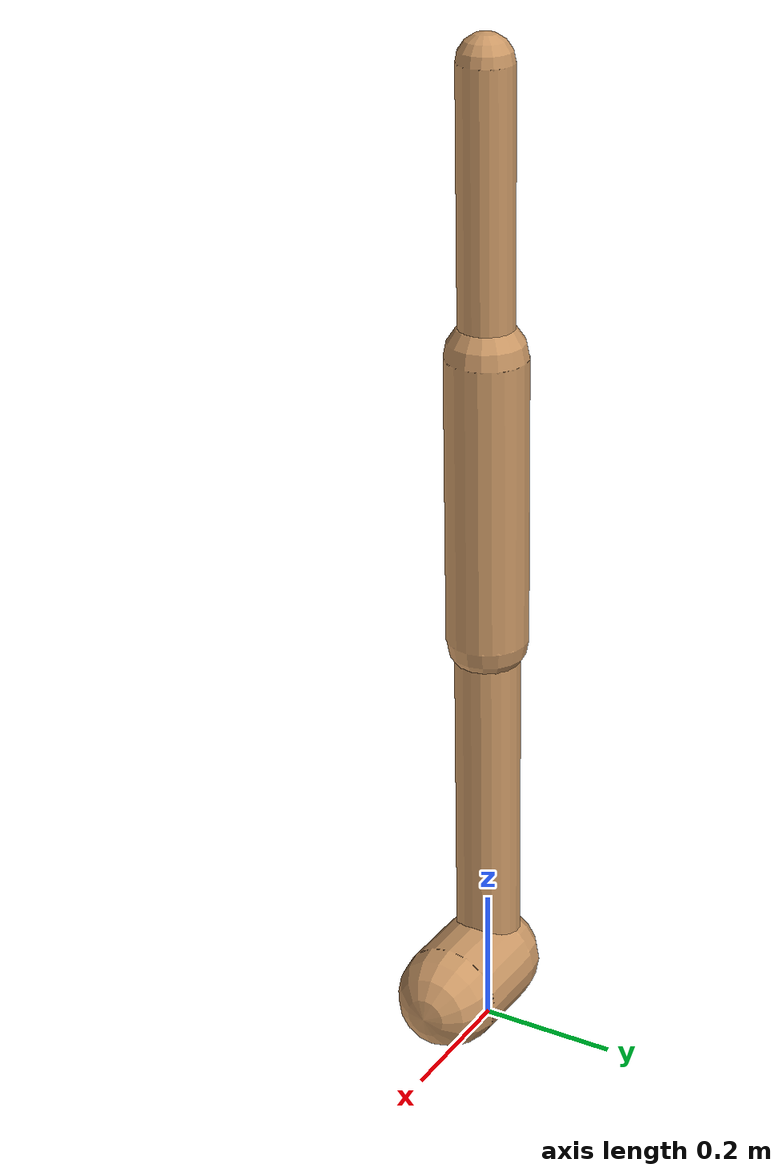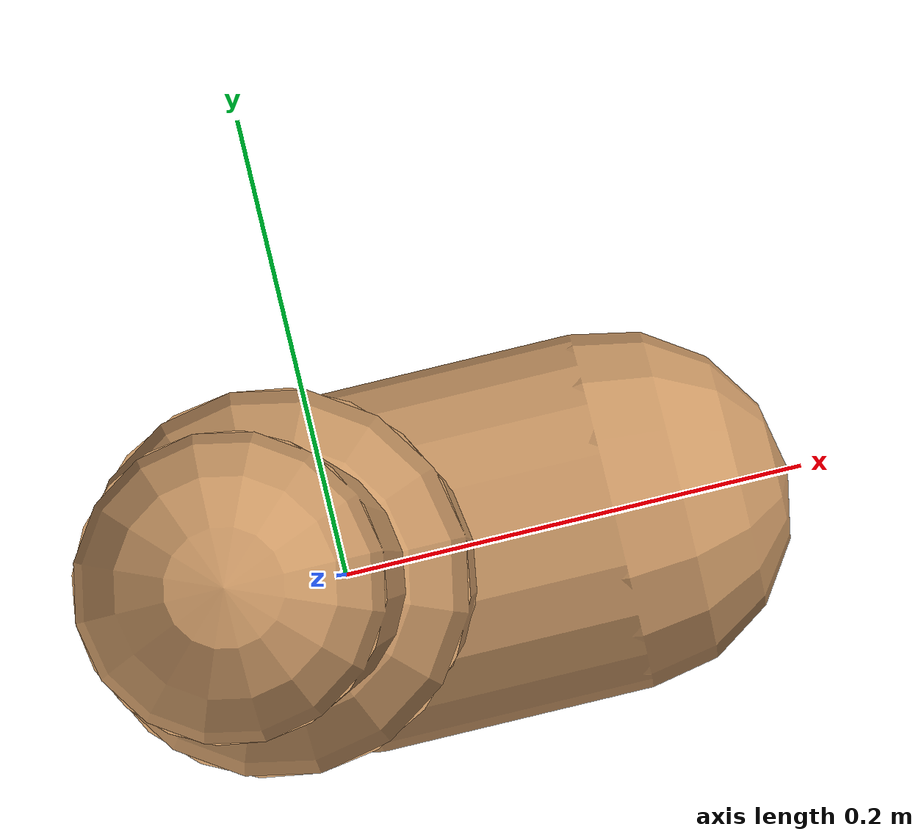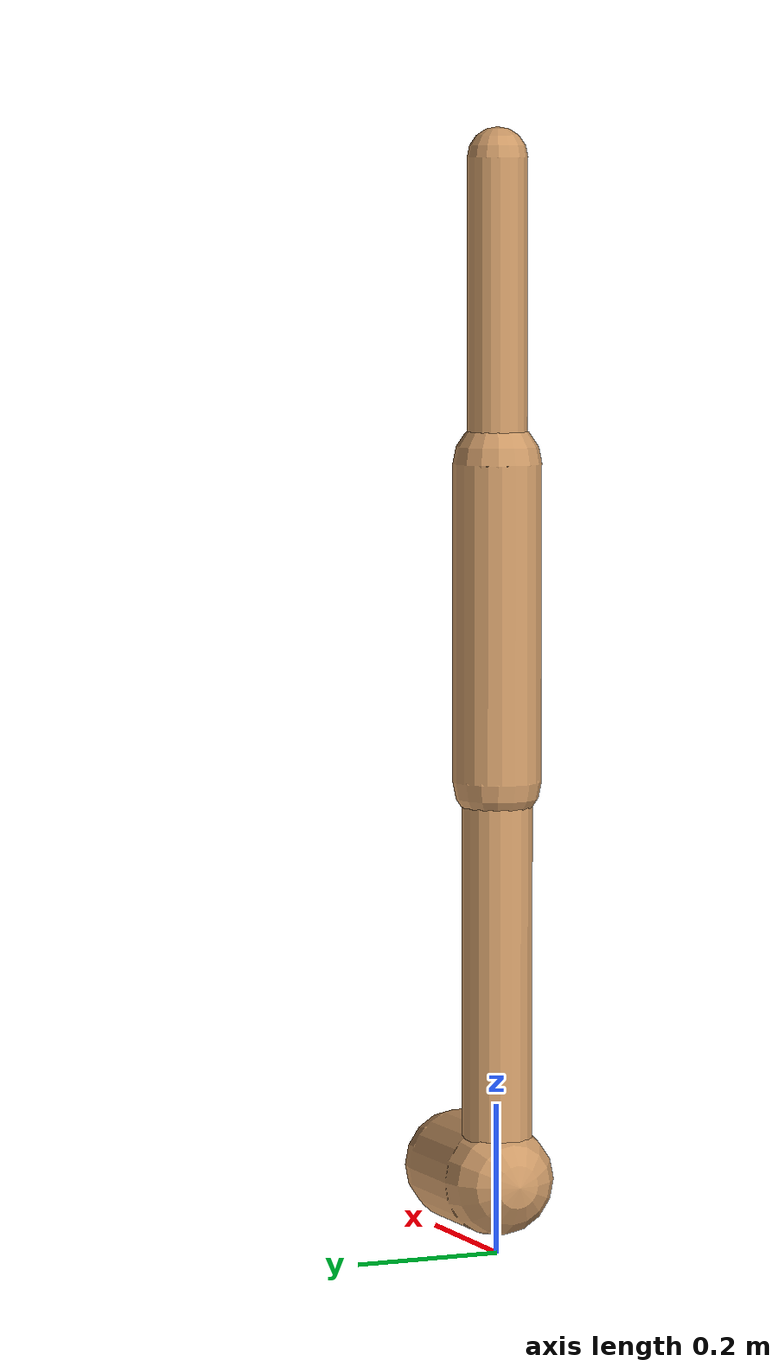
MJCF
<mujoco model="walker2d">
  <compiler angle="degree" coordinate="global" inertiafromgeom="true" />
  <default>
    <joint armature="0.01" damping=".1" limited="true" />
    <geom conaffinity="0" condim="3" contype="1" density="1000" friction="0.8 .1 .1" rgba="0.8 0.6 .4 1" />
  </default>
  <option integrator="RK4" timestep="0.002" />
  <worldbody>

    <body name="torso" pos="0 0 -0.06495724297376156">
      <joint armature="0" axis="1 0 0" damping="0" limited="false" name="ignorex" pos="0 0 0" stiffness="0" type="slide" />
      <joint armature="0" axis="0 0 1" damping="0" limited="false" name="ignorez" pos="0 0 0" ref="1.25" stiffness="0" type="slide" />
      <joint armature="0" axis="0 1 0" damping="0" limited="false" name="ignorey" pos="0 0 0" stiffness="0" type="hinge" />
      <geom fromto="0 0 1.45 0 0 1.05" name="torso_geom" size="0.03968887094950427" type="capsule" />
      <body name="thigh">
        <joint axis="0 -1 0" name="thigh_joint" pos="0 0 1.05" range="-150 0" type="hinge" />
        <geom fromto="0.0 0.0 1.05 0.0 0.0 0.6307692203559923" name="thigh_geom" size="0.058672496749179986" type="capsule" />
        <body name="leg" pos="0.0 0.0 0.030769220355992277">
          <joint axis="0 -1 0" name="leg_joint" pos="0 0 0.6" range="-150 0" type="hinge" />
          <geom fromto="0.0 0.0 0.6 0.0 0.0 0.13418802261776924" name="leg_geom" size="0.046937997399343984" type="capsule" />
          <body name="foot" pos="0.0 0.0 0.03418802261776924">
            <joint axis="0 -1 0" name="foot_joint" pos="0 0 0.1" range="-45 45" type="hinge" />
            <geom fromto="0.0 0.0 0.1 0.11521961486535144 0.0 0.1" name="foot_geom" size="0.0752548325460146" type="capsule" />
          </body>
        </body>
      </body>

      <body name="thigh_left">
        <joint axis="0 -1 0" name="thigh_left_joint" pos="0 0 1.05" range="-150 0" type="hinge" />
        <geom fromto="0.0 0.0 1.05 0.0 0.0 0.6307692203559923" name="thigh_left_geom" rgba=".7 .3 .6 1" size="0.058672496749179986" type="capsule" />
        <body name="leg_left" pos="0.0 0.0 0.030769220355992277">
          <joint axis="0 -1 0" name="leg_left_joint" pos="0 0 0.6" range="-150 0" type="hinge" />
          <geom fromto="0.0 0.0 0.6 0.0 0.0 0.13418802261776924" name="leg_left_geom" rgba=".7 .3 .6 1" size="0.046937997399343984" type="capsule" />
          <body name="foot_left" pos="0.0 0.0 0.03418802261776924">
            <joint axis="0 -1 0" name="foot_left_joint" pos="0 0 0.1" range="-45 45" type="hinge" />
            <geom fromto="0.0 0.0 0.1 0.11521961486535144 0.0 0.1" name="foot_left_geom" rgba=".7 .3 .6 1" size="0.0752548325460146" type="capsule" />
          </body>
        </body>
      </body>
    </body>
  </worldbody>
  <actuator>

    <motor ctrllimited="true" ctrlrange="-1.0 1.0" gear="100" joint="thigh_joint" />
    <motor ctrllimited="true" ctrlrange="-1.0 1.0" gear="100" joint="leg_joint" />
    <motor ctrllimited="true" ctrlrange="-1.0 1.0" gear="100" joint="foot_joint" />
    <motor ctrllimited="true" ctrlrange="-1.0 1.0" gear="100" joint="thigh_left_joint" />
    <motor ctrllimited="true" ctrlrange="-1.0 1.0" gear="100" joint="leg_left_joint" />
    <motor ctrllimited="true" ctrlrange="-1.0 1.0" gear="100" joint="foot_left_joint" />

  </actuator>
</mujoco>
